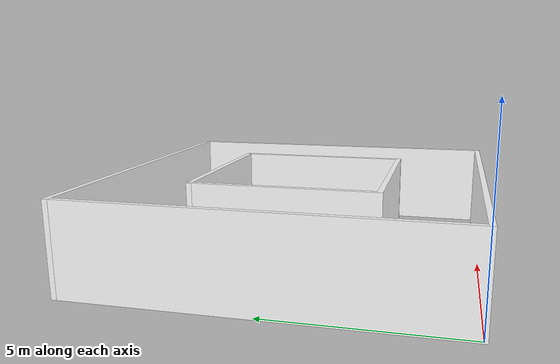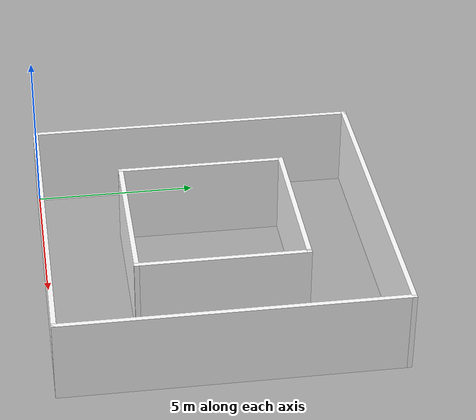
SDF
<?xml version='1.0'?>
<sdf version='1.7'>
  <model name='small_env'>
    <pose>5 5 0 0 -0 0</pose>
    <link name='Wall_0'>
      <collision name='Wall_0_Collision'>
        <geometry>
          <box>
            <size>10.15 0.15 2.5</size>
          </box>
        </geometry>
        <pose>0 0 1.25 0 -0 0</pose>
      </collision>
      <visual name='Wall_0_Visual'>
        <pose>0 0 1.25 0 -0 0</pose>
        <geometry>
          <box>
            <size>10.15 0.15 2.5</size>
          </box>
        </geometry>
        <material>
          <script>
            <uri>model://small_env/materials/scripts</uri>
            <uri>model://small_env/materials/textures</uri>
            <name>wall1/Image </name>
          </script>
          <ambient>1 1 1 1</ambient>
        </material>
        <meta>
          <layer>0</layer>
        </meta>
      </visual>
      <pose>-5 -0 0 0 -0 -1.5708</pose>
    </link>
    <link name='Wall_1'>
      <collision name='Wall_1_Collision'>
        <geometry>
          <box>
            <size>10.15 0.15 2.5</size>
          </box>
        </geometry>
        <pose>0 0 1.25 0 -0 0</pose>
      </collision>
      <visual name='Wall_1_Visual'>
        <pose>0 0 1.25 0 -0 0</pose>
        <geometry>
          <box>
            <size>10.15 0.15 2.5</size>
          </box>
        </geometry>
        <material>
          <script>
            <uri>model://small_env/materials/scripts</uri>
            <uri>model://small_env/materials/textures</uri>
            <name>wall2/Image </name>
          </script>
          <ambient>1 1 1 1</ambient>
        </material>
        <meta>
          <layer>0</layer>
        </meta>
      </visual>
      <pose>-0 -5 0 0 -0 0</pose>
    </link>
    <link name='Wall_10'>
      <collision name='Wall_10_Collision'>
        <geometry>
          <box>
            <size>5.15 0.15 2.5</size>
          </box>
        </geometry>
        <pose>0 0 1.25 0 -0 0</pose>
      </collision>
      <visual name='Wall_10_Visual'>
        <pose>0 0 1.25 0 -0 0</pose>
        <geometry>
          <box>
            <size>5.15 0.15 2.5</size>
          </box>
        </geometry>
        <material>
          <script>
            <uri>model://small_env/materials/scripts</uri>
            <uri>model://small_env/materials/textures</uri>
            <name>wall3/Image </name>
          </script>
          <ambient>1 1 1 1</ambient>
        </material>
        <meta>
          <layer>0</layer>
        </meta>
      </visual>
      <pose>2.5 -0 0 0 -0 -1.5708</pose>
    </link>
    <link name='Wall_2'>
      <collision name='Wall_2_Collision'>
        <geometry>
          <box>
            <size>10.15 0.15 2.5</size>
          </box>
        </geometry>
        <pose>0 0 1.25 0 -0 0</pose>
      </collision>
      <visual name='Wall_2_Visual'>
        <pose>0 0 1.25 0 -0 0</pose>
        <geometry>
          <box>
            <size>10.15 0.15 2.5</size>
          </box>
        </geometry>
        <material>
          <script>
            <uri>model://small_env/materials/scripts</uri>
            <uri>model://small_env/materials/textures</uri>
            <name>wall4/Image </name>
          </script>
          <ambient>1 1 1 1</ambient>
        </material>
        <meta>
          <layer>0</layer>
        </meta>
      </visual>
      <pose>5 -0 0 0 -0 1.5708</pose>
    </link>
    <link name='Wall_3'>
      <collision name='Wall_3_Collision'>
        <geometry>
          <box>
            <size>10.15 0.15 2.5</size>
          </box>
        </geometry>
        <pose>0 0 1.25 0 -0 0</pose>
      </collision>
      <visual name='Wall_3_Visual'>
        <pose>0 0 1.25 0 -0 0</pose>
        <geometry>
          <box>
            <size>10.15 0.15 2.5</size>
          </box>
        </geometry>
        <material>
          <script>
            <uri>model://small_env/materials/scripts</uri>
            <uri>model://small_env/materials/textures</uri>
            <name>wall5/Image </name>
          </script>
          <ambient>1 1 1 1</ambient>
        </material>
        <meta>
          <layer>0</layer>
        </meta>
      </visual>
      <pose>-0 5 0 0 -0 3.14159</pose>
    </link>
    <link name='Wall_6'>
      <collision name='Wall_6_Collision'>
        <geometry>
          <box>
            <size>5.15 0.15 2.5</size>
          </box>
        </geometry>
        <pose>0 0 1.25 0 -0 0</pose>
      </collision>
      <visual name='Wall_6_Visual'>
        <pose>0 0 1.25 0 -0 0</pose>
        <geometry>
          <box>
            <size>5.15 0.15 2.5</size>
          </box>
        </geometry>
        <material>
          <script>
            <uri>model://small_env/materials/scripts</uri>
            <uri>model://small_env/materials/textures</uri>
            <name>wall6/Image </name>
          </script>
          <ambient>1 1 1 1</ambient>
        </material>
        <meta>
          <layer>0</layer>
        </meta>
      </visual>
      <pose>-2.5 -0 0 0 -0 -1.5708</pose>
    </link>
    <link name='Wall_7'>
      <collision name='Wall_7_Collision'>
        <geometry>
          <box>
            <size>5.15 0.15 2.5</size>
          </box>
        </geometry>
        <pose>0 0 1.25 0 -0 0</pose>
      </collision>
      <visual name='Wall_7_Visual'>
        <pose>0 0 1.25 0 -0 0</pose>
        <geometry>
          <box>
            <size>5.15 0.15 2.5</size>
          </box>
        </geometry>
        <material>
          <script>
            <uri>model://small_env/materials/scripts</uri>
            <uri>model://small_env/materials/textures</uri>
            <name>wall7/Image </name>
          </script>
          <ambient>1 1 1 1</ambient>
        </material>
        <meta>
          <layer>0</layer>
        </meta>
      </visual>
      <pose>-0 -2.5 0 0 -0 0</pose>
    </link>
    <link name='Wall_9'>
      <collision name='Wall_9_Collision'>
        <geometry>
          <box>
            <size>5.15 0.15 2.5</size>
          </box>
        </geometry>
        <pose>0 0 1.25 0 -0 0</pose>
      </collision>
      <visual name='Wall_9_Visual'>
        <pose>0 0 1.25 0 -0 0</pose>
        <geometry>
          <box>
            <size>5.15 0.15 2.5</size>
          </box>
        </geometry>
        <material>
          <script>
            <uri>model://small_env/materials/scripts</uri>
            <uri>model://small_env/materials/textures</uri>
            <name>wall8/Image </name>
          </script>
          <ambient>1 1 1 1</ambient>
        </material>
        <meta>
          <layer>0</layer>
        </meta>
      </visual>
      <pose>-0 2.5 0 0 -0 0</pose>
    </link>
    <static>1</static>
  </model>
</sdf>
